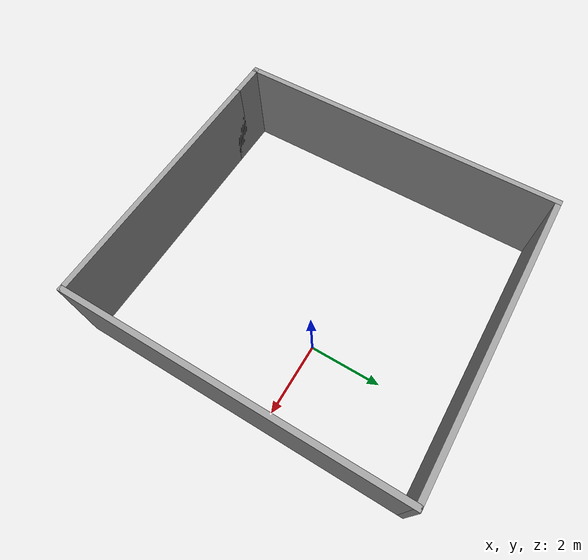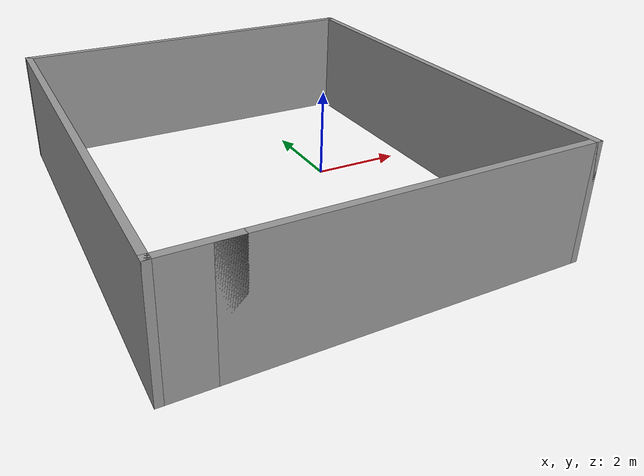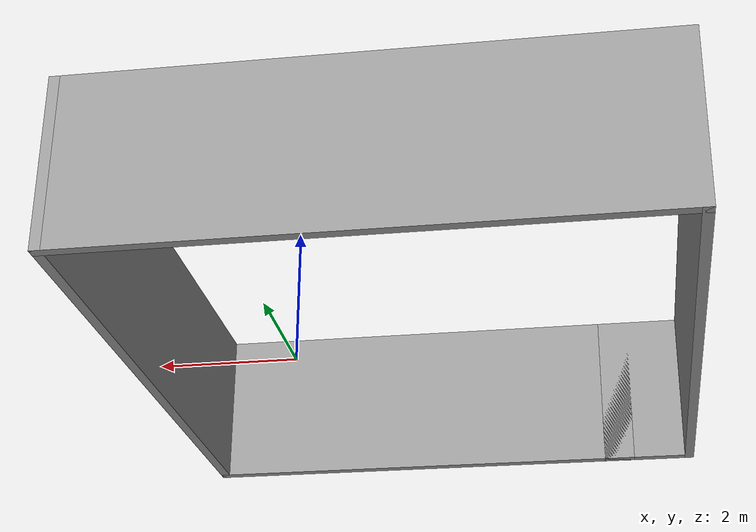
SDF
<?xml version='1.0'?>
<sdf version='1.7'>
  <model name='test'>
    <pose>-1.64062 -0.69905 0 0 -0 0</pose>
    <link name='Wall_10'>
      <collision name='Wall_10_Collision'>
        <geometry>
          <box>
            <size>9.25 0.15 2.5</size>
          </box>
        </geometry>
        <pose>0 0 1.25 0 -0 0</pose>
      </collision>
      <visual name='Wall_10_Visual'>
        <pose>0 0 1.25 0 -0 0</pose>
        <geometry>
          <box>
            <size>9.25 0.15 2.5</size>
          </box>
        </geometry>
        <material>
          <script>
            <uri>file://media/materials/scripts/gazebo.material</uri>
            <name>Gazebo/Grey</name>
          </script>
          <ambient>1 1 1 1</ambient>
        </material>
        <meta>
          <layer>0</layer>
        </meta>
      </visual>
      <pose>-4.05 -0 0 0 -0 -1.5708</pose>
    </link>
    <link name='Wall_11'>
      <collision name='Wall_11_Collision'>
        <geometry>
          <box>
            <size>1.5 0.15 2.5</size>
          </box>
        </geometry>
        <pose>0 0 1.25 0 -0 0</pose>
      </collision>
      <visual name='Wall_11_Visual'>
        <pose>0 0 1.25 0 -0 0</pose>
        <geometry>
          <box>
            <size>1.5 0.15 2.5</size>
          </box>
        </geometry>
        <material>
          <script>
            <uri>file://media/materials/scripts/gazebo.material</uri>
            <name>Gazebo/Grey</name>
          </script>
          <ambient>1 1 1 1</ambient>
        </material>
        <meta>
          <layer>0</layer>
        </meta>
      </visual>
      <pose>-3.375 -4.55 0 0 -0 0</pose>
    </link>
    <link name='Wall_7'>
      <collision name='Wall_7_Collision'>
        <geometry>
          <box>
            <size>7.25 0.15 2.5</size>
          </box>
        </geometry>
        <pose>0 0 1.25 0 -0 0</pose>
      </collision>
      <visual name='Wall_7_Visual'>
        <pose>0 0 1.25 0 -0 0</pose>
        <geometry>
          <box>
            <size>7.25 0.15 2.5</size>
          </box>
        </geometry>
        <material>
          <script>
            <uri>file://media/materials/scripts/gazebo.material</uri>
            <name>Gazebo/Grey</name>
          </script>
          <ambient>1 1 1 1</ambient>
        </material>
        <meta>
          <layer>0</layer>
        </meta>
      </visual>
      <pose>0.5 -4.55 0 0 -0 0</pose>
    </link>
    <link name='Wall_8'>
      <collision name='Wall_8_Collision'>
        <geometry>
          <box>
            <size>9.25 0.15 2.5</size>
          </box>
        </geometry>
        <pose>0 0 1.25 0 -0 0</pose>
      </collision>
      <visual name='Wall_8_Visual'>
        <pose>0 0 1.25 0 -0 0</pose>
        <geometry>
          <box>
            <size>9.25 0.15 2.5</size>
          </box>
        </geometry>
        <material>
          <script>
            <uri>file://media/materials/scripts/gazebo.material</uri>
            <name>Gazebo/Grey</name>
          </script>
          <ambient>1 1 1 1</ambient>
        </material>
        <meta>
          <layer>0</layer>
        </meta>
      </visual>
      <pose>4.05 -0 0 0 -0 1.5708</pose>
    </link>
    <link name='Wall_9'>
      <collision name='Wall_9_Collision'>
        <geometry>
          <box>
            <size>8.25 0.15 2.5</size>
          </box>
        </geometry>
        <pose>0 0 1.25 0 -0 0</pose>
      </collision>
      <visual name='Wall_9_Visual'>
        <pose>0 0 1.25 0 -0 0</pose>
        <geometry>
          <box>
            <size>8.25 0.15 2.5</size>
          </box>
        </geometry>
        <material>
          <script>
            <uri>file://media/materials/scripts/gazebo.material</uri>
            <name>Gazebo/Grey</name>
          </script>
          <ambient>1 1 1 1</ambient>
        </material>
        <meta>
          <layer>0</layer>
        </meta>
      </visual>
      <pose>0 4.55 0 0 -0 3.14159</pose>
    </link>
    <static>1</static>
  </model>
</sdf>
